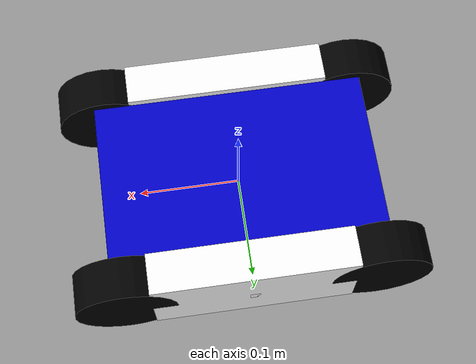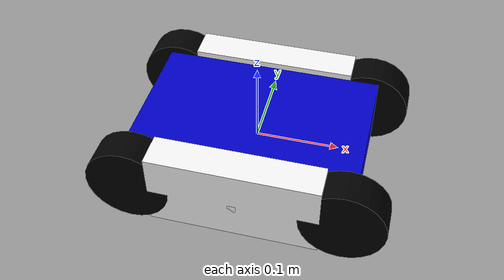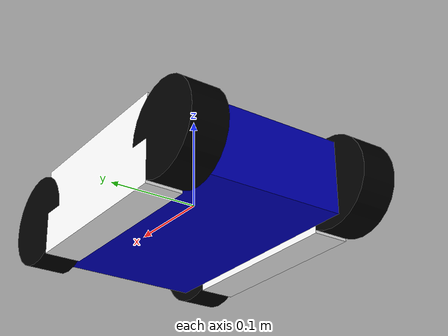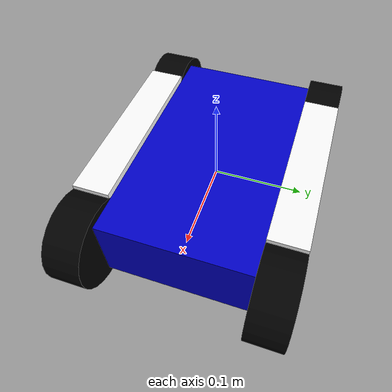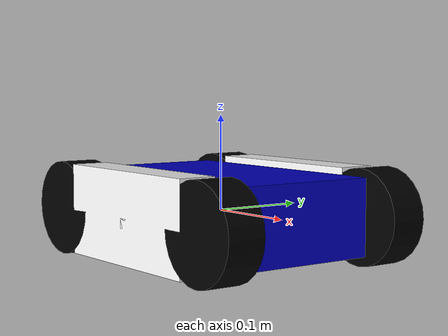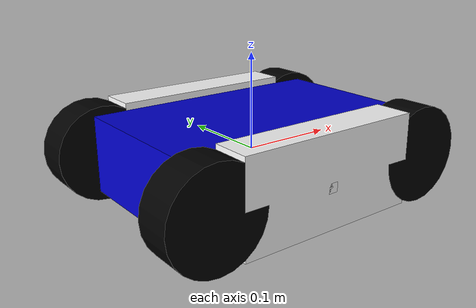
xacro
<?xml version="1.0"?>
<robot xmlns:xacro="http://www.ros.org/wiki/xacro" name="mira-base">

  <xacro:property name="width" value="0.2" />
  <xacro:property name="leglen" value="0.01" />
  <xacro:property name="baselen" value="0.2" />
  <xacro:property name="wheeldiam" value="0.1" />
  <xacro:property name="pi" value="3.1415" />
    <xacro:macro name="mira-base" params="*origin parent:=base_link name:=mira-base"/>

  <material name="blue">
    <color rgba="0 0 0.8 1"/>
  </material>

  <material name="black">
    <color rgba="0 0 0 1"/>
  </material>

  <material name="white">
    <color rgba="1 1 1 1"/>
  </material>

  <xacro:macro name="default_inertial" params="mass">
    <inertial>
      <mass value="${mass}" />
      <inertia ixx="1.0" ixy="0.0" ixz="0.0" iyy="1.0" iyz="0.0" izz="1.0" />
    </inertial>
  </xacro:macro>

<xacro:macro name="default_inertial_wheels">
    <inertial>
    <mass value="0.5" />
    <origin xyz="0 0 0" rpy="${pi/2} 0 0" />
        <inertia ixx="${(0.5 * (3.0*0.05*0.05 + 0.02*0.02)) / 12.0}" ixy="0" ixz="0"
        iyy="${(0.5 * (3.0*0.05*0.05 + 0.02*0.02)) / 12.0}" iyz="0"
        izz="${0.5 * 0.5 * (0.05*0.05)}"/>
    </inertial>
</xacro:macro>

  <link name="base_link">
    <visual>
      <geometry>
        <box size="0.27 0.17 0.08" />
      </geometry>
      <material name="blue"/>
    </visual>
    <collision>
      <geometry>
        <box size="0.27 0.17 0.08" />
      </geometry>
    </collision>
    <xacro:default_inertial mass="6"/>
  </link>

  <xacro:macro name="wheel" params="prefix suffix reflect">

    <link name="${prefix}_${suffix}_wheel">
      <visual>
        <origin xyz="0 0 0" rpy="${pi/2} 0 0" />
        <geometry>
          <cylinder radius="${wheeldiam/2}" length="0.04"/>
        </geometry>
        <material name="black"/>
      </visual>
      <collision>
        <origin xyz="0 0 0" rpy="${pi/2} 0 0" />
        <geometry>
          <cylinder radius="${wheeldiam/2}" length="0.04"/>
        </geometry>
      </collision>
      <xacro:default_inertial_wheels/>
    </link>
    <joint name="${prefix}_${suffix}_wheel_joint" type="continuous">
      <axis xyz="0 1 0" rpy="0 0 0" />
      <parent link="${prefix}_base"/>
      <child link="${prefix}_${suffix}_wheel"/>
      <origin xyz="${reflect*0.125 } 0 -0.001" rpy="0 0 0"/>
    </joint>

    <!-- This block provides the simulator (Gazebo) with information on a few additional
    physical properties. See http://gazebosim.org/tutorials/?tut=ros_urdf for more-->
    <gazebo reference="${prefix}_${suffix}_wheel">
      <mu1 value="200.0"/>
      <mu2 value="100.0"/>
      <kp value="10000000.0" />
      <kd value="1.0" />
      <selfCollide value="false"/>
      <material>Gazebo/Grey</material>
    </gazebo>

    <!-- This block connects the wheel joint to an actuator (motor), which informs both
    simulation and visualization of the robot -->
    <transmission name="${prefix}_${suffix}_wheel_trans">
      <type>transmission_interface/SimpleTransmission</type>
      <actuator name="${prefix}_${suffix}_wheel_motor">
        <mechanicalReduction>1</mechanicalReduction>
      </actuator>
      <joint name="${prefix}_${suffix}_wheel_joint">
        <hardwareInterface>VelocityJointInterface</hardwareInterface>
      </joint>
    </transmission>

  </xacro:macro>

  <xacro:macro name="leg" params="prefix reflect">
    <link name="${prefix}_leg">
      <visual>
        <geometry>
          <box size="${leglen} 0.04 0.01"/>
        </geometry>
        <origin xyz="0 0 -${leglen/2}" rpy="0 ${pi/2} 0"/>
        <material name="white"/>
      </visual>
      <collision>
        <geometry>
          <box size="${leglen} 0.04 0.01"/>
        </geometry>
        <origin xyz="0 0 ${leglen/2}" rpy="0 ${pi/2} 0"/>
      </collision>
      <xacro:default_inertial mass="0.5"/>
    </link>

    <joint name="base_to_${prefix}_leg" type="fixed">
      <parent link="base_link"/>
      <child link="${prefix}_leg"/>
      <origin xyz="0 ${reflect*(width/2)} 0." />
    </joint>

    <link name="${prefix}_base">
      <visual>
        <geometry>
          <box size="${baselen} 0.04 0.095"/>
        </geometry>
        <material name="white"/>
      </visual>
      <collision>
        <geometry>
          <box size="${baselen} 0.04 0.095"/>
        </geometry>
      </collision>
      <xacro:default_inertial mass="0.5"/>
    </link>

    <joint name="${prefix}_base_joint" type="fixed">
      <parent link="${prefix}_leg"/>
      <child link="${prefix}_base"/>
      <origin xyz="0 0 0" />
    </joint>
    <xacro:wheel prefix="${prefix}" suffix="front" reflect="1"/>
    <xacro:wheel prefix="${prefix}" suffix="back" reflect="-1"/>
  </xacro:macro>
  <xacro:leg prefix="right" reflect="-1" />
  <xacro:leg prefix="left" reflect="1" />
</robot>
